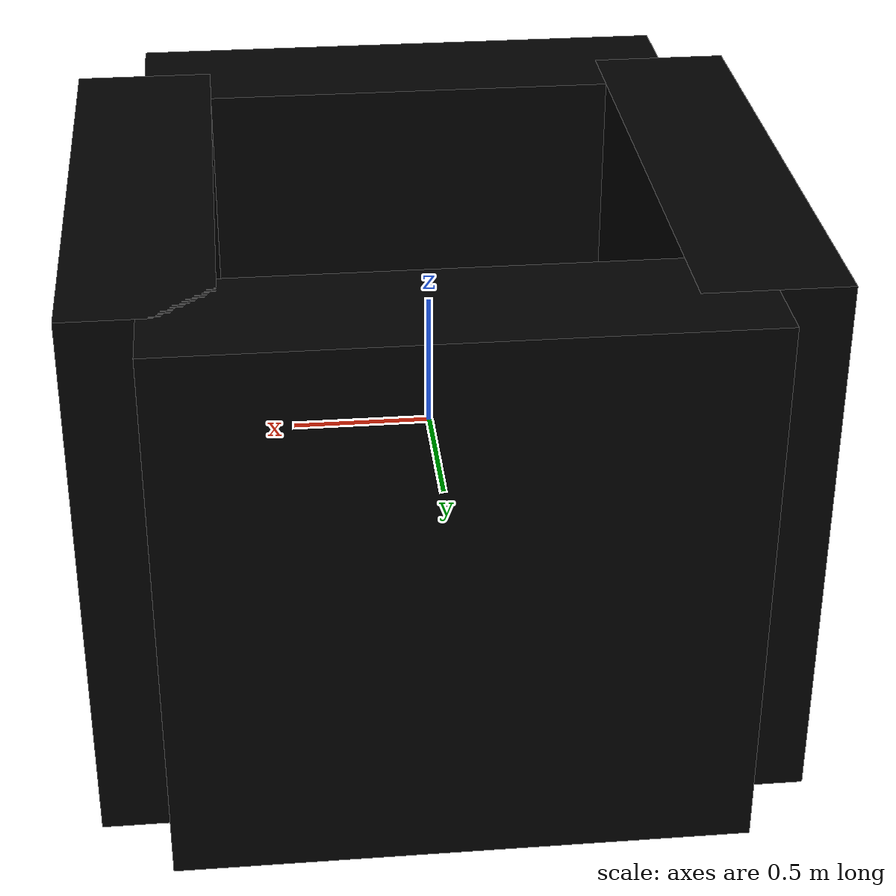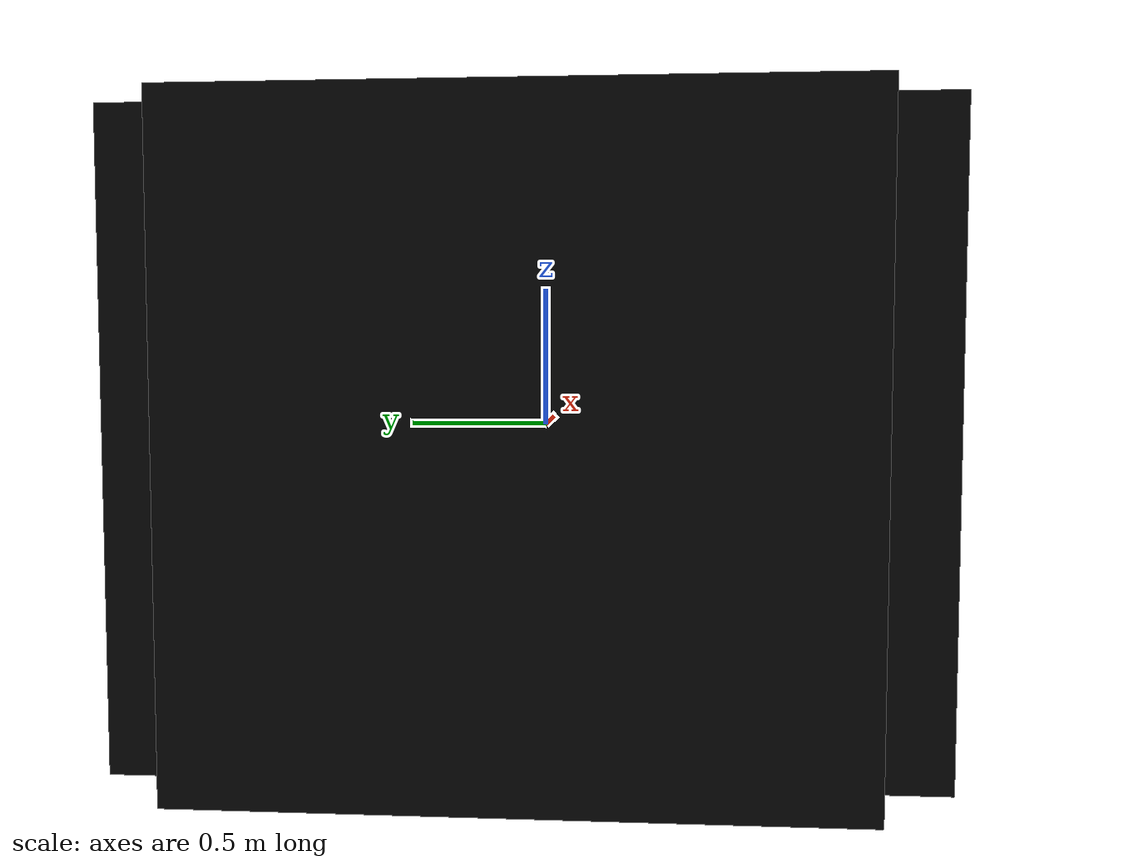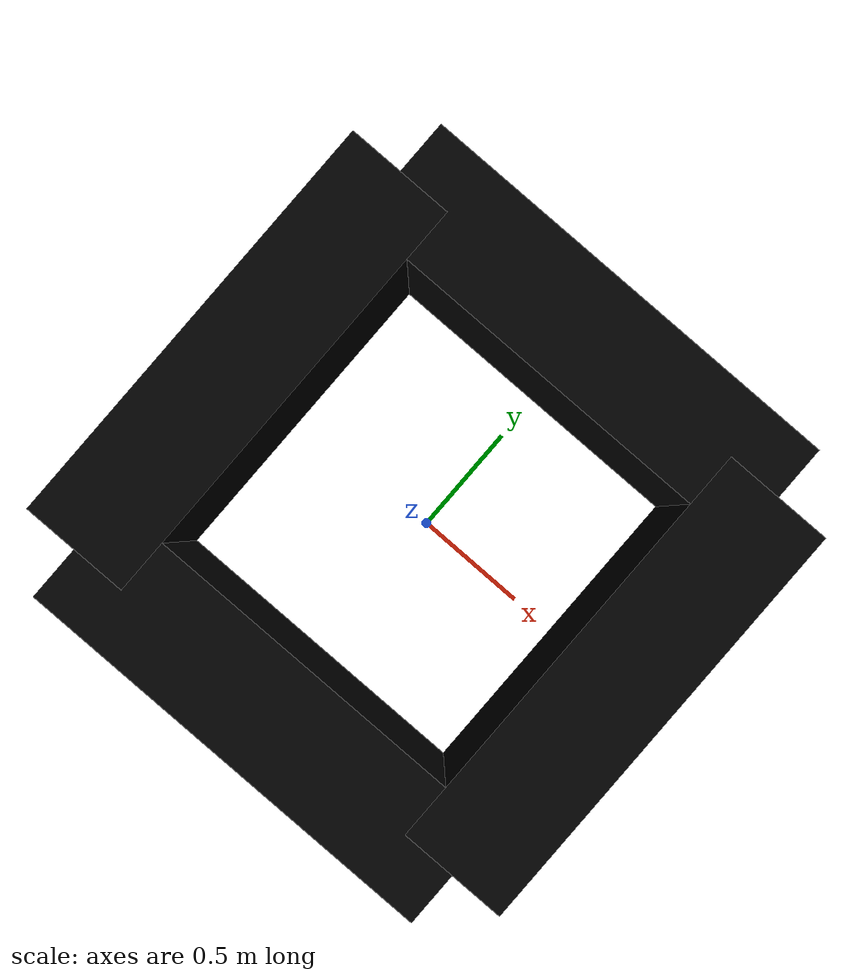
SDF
<?xml version="1.0"?>
<sdf version="1.7">
  <model name="homecart_collision_walls">
    <link name="homecart_collision_walls">
      <pose>0 0 0 0 0 0</pose>
      <!-- Computed assuming uniform density box -->
      <inertial>
        <pose>0 0 0 0 0 0</pose>
        <mass>0.1</mass>
        <inertia>
          <ixx> 0.00004166666 </ixx>
          <ixy> 0 </ixy>
          <ixz> 0 </ixz>
          <iyy> 0.00004166666 </iyy>
          <iyz> 0 </iyz>
          <izz> 0.00004166666 </izz>
        </inertia>
      </inertial>

      <visual name="right_visual">
        <pose>1.0 0 0 0 0 0</pose>
        <geometry>
          <box>
            <size>0.5 2.0 2.0</size>
          </box>
        </geometry>
        <material>
          <diffuse>0 0 0 0</diffuse>
        </material>
      </visual>

      <collision name="right_collision">
        <pose>1.0 0 0 0 0 0</pose>
        <geometry>
          <box>
            <size>0.5 2.0 2.0</size>
          </box>
        </geometry>
      </collision>

      <visual name="left_visual">
        <pose>-1.0 0 0 0 0 0</pose>
        <geometry>
          <box>
            <size>0.5 2.0 2.0</size>
          </box>
        </geometry>
        <material>
          <diffuse>0 0 0 0</diffuse>
        </material>
      </visual>

      <collision name="left_collision">
        <pose>-1.0 0 0 0 0 0</pose>
        <geometry>
          <box>
            <size>0.5 2.0 2.0</size>
          </box>
        </geometry>
      </collision>

      <visual name="front_visual">
        <pose>0 1.0 0 0 0 0</pose>
        <geometry>
          <box>
            <size>2.0 0.5 2.0</size>
          </box>
        </geometry>
        <material>
          <diffuse>0 0 0 0</diffuse>
        </material>
      </visual>

      <collision name="front_collision">
        <pose>0 1.0 0 0 0 0</pose>
        <geometry>
          <box>
            <size>2.0 0.5 2.0</size>
          </box>
        </geometry>
      </collision>

      <visual name="back_visual">
        <pose>0 -1.0 0 0 0 0</pose>
        <geometry>
          <box>
            <size>2.0 0.5 2.0</size>
          </box>
        </geometry>
        <material>
          <diffuse>0 0 0 0</diffuse>
        </material>
      </visual>

      <collision name="back_collision">
        <pose>0 -1.0 0 0 0 0</pose>
        <geometry>
          <box>
            <size>2.0 0.5 2.0</size>
          </box>
        </geometry>
      </collision>
    </link>
  </model>
</sdf>
